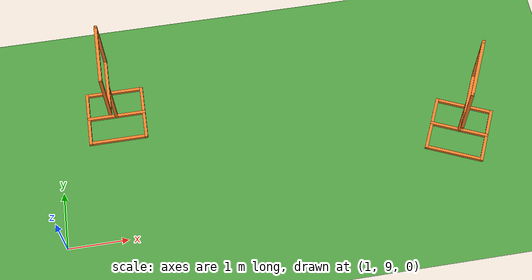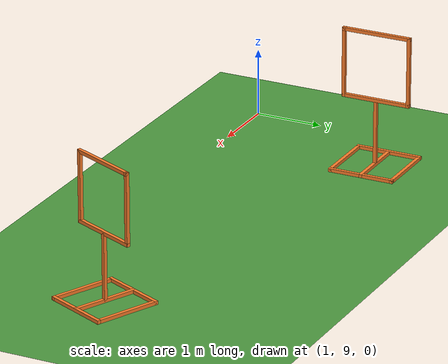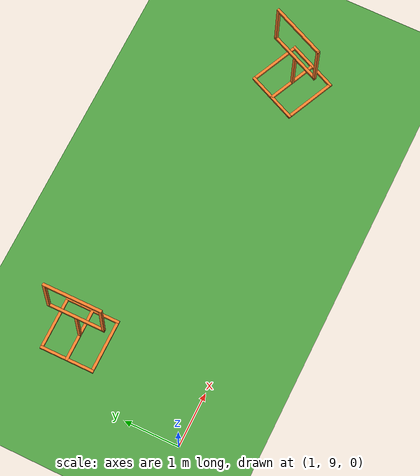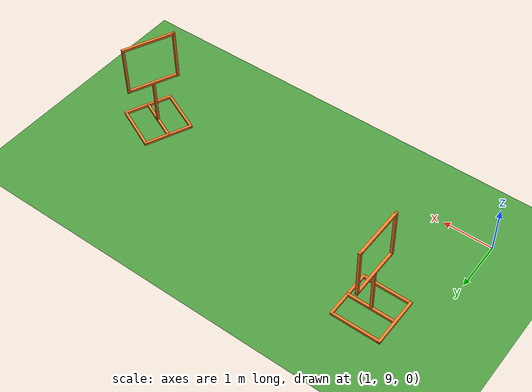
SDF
<sdf version="1.6">
 <world name="default">
  <model name="grass_plane">
   <static>1</static>
   <link name="link">
    <collision name="collision">
     <pose>-40 -40 0 0 -0 0</pose>
     <geometry><plane><normal>0 0 1</normal><size>40 40</size></plane></geometry>
     <surface><friction><ode><mu>0.5</mu><mu2>0.5</mu2></ode></friction></surface>
    </collision>
    <visual name="visual">
     <pose>-40 -40 0 0 -0 0</pose>
     <cast_shadows>0</cast_shadows>
     <geometry><plane><normal>0 0 1</normal><size>40 40</size></plane></geometry>
     <material>
      <script>
       <uri>model://grass_plane/materials/scripts</uri>
       <uri>model://grass_plane/materials/textures</uri>
       <name>vrc/grass</name>
      </script>
     </material>
    </visual>
   </link>
   <pose>40 40 0 0 -0 0</pose>
  </model>
  <model name="TMR_Gate_1">
   <link name="link">
    <pose>0 0 0.5 0 -0 0</pose>
    <inertial>
     <mass>1</mass>
     <inertia>
      <ixx>0.166667</ixx>
      <ixy>0</ixy>
      <ixz>0</ixz>
      <iyy>0.166667</iyy>
      <iyz>0</iyz>
      <izz>0.166667</izz>
     </inertia>
    </inertial>
    <visual name="visual">
     <geometry><box><size>0.05 0.05 1</size></box></geometry>
     <material>
      <script><name>Gazebo/Grey</name><uri>file://media/materials/scripts/gazebo.material</uri></script>
      <shader type="vertex"><normal_map>__default__</normal_map></shader>
      <ambient>0.976 0.484 0.164 1</ambient>
      <diffuse>0.976 0.484 0.164 1</diffuse>
      <specular>0.01 0.01 0.01 1</specular>
      <emissive>0 0 0 1</emissive>
     </material>
    </visual>
    <collision name="collision">
     <geometry><box><size>0.05 0.05 1</size></box></geometry>
     <surface>
      <friction>
       <ode><mu>1</mu><mu2>1</mu2><fdir1>0 0 0</fdir1><slip1>0</slip1><slip2>0</slip2></ode>
       <torsional>
        <coefficient>1</coefficient>
        <patch_radius>0</patch_radius>
        <surface_radius>0</surface_radius>
        <use_patch_radius>1</use_patch_radius>
        <ode><slip>0</slip></ode>
       </torsional>
      </friction>
      <bounce><restitution_coefficient>0</restitution_coefficient><threshold>1e+06</threshold></bounce>
      <contact>
       <collide_without_contact>0</collide_without_contact>
       <collide_without_contact_bitmask>1</collide_without_contact_bitmask>
       <collide_bitmask>1</collide_bitmask>
       <ode>
        <soft_cfm>0</soft_cfm>
        <soft_erp>0.2</soft_erp>
        <kp>1e+13</kp>
        <kd>1</kd>
        <max_vel>0.01</max_vel>
        <min_depth>0</min_depth>
       </ode>
       <bullet>
        <split_impulse>1</split_impulse>
        <split_impulse_penetration_threshold>-0.01</split_impulse_penetration_threshold>
        <soft_cfm>0</soft_cfm>
        <soft_erp>0.2</soft_erp>
        <kp>1e+13</kp>
        <kd>1</kd>
       </bullet>
      </contact>
     </surface>
    </collision>
   </link>
   <link name="link_10">
    <pose>0.5 0 0.8 0 -0 0</pose>
    <inertial>
     <mass>1</mass>
     <inertia>
      <ixx>0.166667</ixx>
      <ixy>0</ixy>
      <ixz>0</ixz>
      <iyy>0.166667</iyy>
      <iyz>0</iyz>
      <izz>0.166667</izz>
     </inertia>
    </inertial>
    <visual name="visual">
     <geometry><box><size>0.05 0.05 1.05</size></box></geometry>
     <material>
      <script><name>Gazebo/Grey</name><uri>file://media/materials/scripts/gazebo.material</uri></script>
      <shader type="vertex"><normal_map>__default__</normal_map></shader>
      <ambient>0.976 0.484 0.164 1</ambient>
      <diffuse>0.976 0.484 0.164 1</diffuse>
      <specular>0.01 0.01 0.01 1</specular>
      <emissive>0 0 0 1</emissive>
     </material>
     <pose>0 0 0.7 0 -0 0</pose>
    </visual>
    <collision name="collision">
     <pose>0 0 0.7 0 -0 0</pose>
     <geometry><box><size>0.05 0.05 1.05</size></box></geometry>
     <surface>
      <friction>
       <ode><mu>1</mu><mu2>1</mu2><fdir1>0 0 0</fdir1><slip1>0</slip1><slip2>0</slip2></ode>
       <torsional>
        <coefficient>1</coefficient>
        <patch_radius>0</patch_radius>
        <surface_radius>0</surface_radius>
        <use_patch_radius>1</use_patch_radius>
        <ode><slip>0</slip></ode>
       </torsional>
      </friction>
      <bounce><restitution_coefficient>0</restitution_coefficient><threshold>1e+06</threshold></bounce>
      <contact>
       <collide_without_contact>0</collide_without_contact>
       <collide_without_contact_bitmask>1</collide_without_contact_bitmask>
       <collide_bitmask>1</collide_bitmask>
       <ode>
        <soft_cfm>0</soft_cfm>
        <soft_erp>0.2</soft_erp>
        <kp>1e+13</kp>
        <kd>1</kd>
        <max_vel>0.01</max_vel>
        <min_depth>0</min_depth>
       </ode>
       <bullet>
        <split_impulse>1</split_impulse>
        <split_impulse_penetration_threshold>-0.01</split_impulse_penetration_threshold>
        <soft_cfm>0</soft_cfm>
        <soft_erp>0.2</soft_erp>
        <kp>1e+13</kp>
        <kd>1</kd>
       </bullet>
      </contact>
     </surface>
    </collision>
   </link>
   <link name="link_2">
    <pose>0 0 0.025 0 -0 0</pose>
    <inertial>
     <mass>1</mass>
     <inertia>
      <ixx>0.166667</ixx>
      <ixy>0</ixy>
      <ixz>0</ixz>
      <iyy>0.166667</iyy>
      <iyz>0</iyz>
      <izz>0.166667</izz>
     </inertia>
    </inertial>
    <visual name="visual">
     <geometry><box><size>0.05 1 0.05</size></box></geometry>
     <material>
      <script><name>Gazebo/Grey</name><uri>file://media/materials/scripts/gazebo.material</uri></script>
      <shader type="vertex"><normal_map>__default__</normal_map></shader>
      <ambient>0.976 0.484 0.164 1</ambient>
      <diffuse>0.976 0.484 0.164 1</diffuse>
      <specular>0.01 0.01 0.01 1</specular>
      <emissive>0 0 0 1</emissive>
     </material>
    </visual>
    <collision name="collision">
     <geometry><box><size>0.05 1 0.05</size></box></geometry>
     <surface>
      <friction>
       <ode><mu>1</mu><mu2>1</mu2><fdir1>0 0 0</fdir1><slip1>0</slip1><slip2>0</slip2></ode>
       <torsional>
        <coefficient>1</coefficient>
        <patch_radius>0</patch_radius>
        <surface_radius>0</surface_radius>
        <use_patch_radius>1</use_patch_radius>
        <ode><slip>0</slip></ode>
       </torsional>
      </friction>
      <bounce><restitution_coefficient>0</restitution_coefficient><threshold>1e+06</threshold></bounce>
      <contact>
       <collide_without_contact>0</collide_without_contact>
       <collide_without_contact_bitmask>1</collide_without_contact_bitmask>
       <collide_bitmask>1</collide_bitmask>
       <ode>
        <soft_cfm>0</soft_cfm>
        <soft_erp>0.2</soft_erp>
        <kp>1e+13</kp>
        <kd>1</kd>
        <max_vel>0.01</max_vel>
        <min_depth>0</min_depth>
       </ode>
       <bullet>
        <split_impulse>1</split_impulse>
        <split_impulse_penetration_threshold>-0.01</split_impulse_penetration_threshold>
        <soft_cfm>0</soft_cfm>
        <soft_erp>0.2</soft_erp>
        <kp>1e+13</kp>
        <kd>1</kd>
       </bullet>
      </contact>
     </surface>
    </collision>
   </link>
   <link name="link_3">
    <pose>0.475 0 0.024 0 -0 0</pose>
    <inertial>
     <mass>1</mass>
     <inertia>
      <ixx>0.166667</ixx>
      <ixy>0</ixy>
      <ixz>0</ixz>
      <iyy>0.166667</iyy>
      <iyz>0</iyz>
      <izz>0.166667</izz>
     </inertia>
    </inertial>
    <visual name="visual">
     <geometry><box><size>0.05 1 0.05</size></box></geometry>
     <material>
      <script><name>Gazebo/Grey</name><uri>file://media/materials/scripts/gazebo.material</uri></script>
      <shader type="vertex"><normal_map>__default__</normal_map></shader>
      <ambient>0.976 0.484 0.164 1</ambient>
      <diffuse>0.976 0.484 0.164 1</diffuse>
      <specular>0.01 0.01 0.01 1</specular>
      <emissive>0 0 0 1</emissive>
     </material>
    </visual>
    <collision name="collision">
     <geometry><box><size>0.05 1 0.05</size></box></geometry>
     <surface>
      <friction>
       <ode><mu>1</mu><mu2>1</mu2><fdir1>0 0 0</fdir1><slip1>0</slip1><slip2>0</slip2></ode>
       <torsional>
        <coefficient>1</coefficient>
        <patch_radius>0</patch_radius>
        <surface_radius>0</surface_radius>
        <use_patch_radius>1</use_patch_radius>
        <ode><slip>0</slip></ode>
       </torsional>
      </friction>
      <bounce><restitution_coefficient>0</restitution_coefficient><threshold>1e+06</threshold></bounce>
      <contact>
       <collide_without_contact>0</collide_without_contact>
       <collide_without_contact_bitmask>1</collide_without_contact_bitmask>
       <collide_bitmask>1</collide_bitmask>
       <ode>
        <soft_cfm>0</soft_cfm>
        <soft_erp>0.2</soft_erp>
        <kp>1e+13</kp>
        <kd>1</kd>
        <max_vel>0.01</max_vel>
        <min_depth>0</min_depth>
       </ode>
       <bullet>
        <split_impulse>1</split_impulse>
        <split_impulse_penetration_threshold>-0.01</split_impulse_penetration_threshold>
        <soft_cfm>0</soft_cfm>
        <soft_erp>0.2</soft_erp>
        <kp>1e+13</kp>
        <kd>1</kd>
       </bullet>
      </contact>
     </surface>
    </collision>
   </link>
   <link name="link_4">
    <pose>-0.475 -0 0.024 0 -0 0</pose>
    <inertial>
     <mass>1</mass>
     <inertia>
      <ixx>0.166667</ixx>
      <ixy>0</ixy>
      <ixz>0</ixz>
      <iyy>0.166667</iyy>
      <iyz>0</iyz>
      <izz>0.166667</izz>
     </inertia>
    </inertial>
    <visual name="visual">
     <geometry><box><size>0.05 1 0.05</size></box></geometry>
     <material>
      <script><name>Gazebo/Grey</name><uri>file://media/materials/scripts/gazebo.material</uri></script>
      <shader type="vertex"><normal_map>__default__</normal_map></shader>
      <ambient>0.976 0.484 0.164 1</ambient>
      <diffuse>0.976 0.484 0.164 1</diffuse>
      <specular>0.01 0.01 0.01 1</specular>
      <emissive>0 0 0 1</emissive>
     </material>
    </visual>
    <collision name="collision">
     <geometry><box><size>0.05 1 0.05</size></box></geometry>
     <surface>
      <friction>
       <ode><mu>1</mu><mu2>1</mu2><fdir1>0 0 0</fdir1><slip1>0</slip1><slip2>0</slip2></ode>
       <torsional>
        <coefficient>1</coefficient>
        <patch_radius>0</patch_radius>
        <surface_radius>0</surface_radius>
        <use_patch_radius>1</use_patch_radius>
        <ode><slip>0</slip></ode>
       </torsional>
      </friction>
      <bounce><restitution_coefficient>0</restitution_coefficient><threshold>1e+06</threshold></bounce>
      <contact>
       <collide_without_contact>0</collide_without_contact>
       <collide_without_contact_bitmask>1</collide_without_contact_bitmask>
       <collide_bitmask>1</collide_bitmask>
       <ode>
        <soft_cfm>0</soft_cfm>
        <soft_erp>0.2</soft_erp>
        <kp>1e+13</kp>
        <kd>1</kd>
        <max_vel>0.01</max_vel>
        <min_depth>0</min_depth>
       </ode>
       <bullet>
        <split_impulse>1</split_impulse>
        <split_impulse_penetration_threshold>-0.01</split_impulse_penetration_threshold>
        <soft_cfm>0</soft_cfm>
        <soft_erp>0.2</soft_erp>
        <kp>1e+13</kp>
        <kd>1</kd>
       </bullet>
      </contact>
     </surface>
    </collision>
   </link>
   <link name="link_5">
    <pose>0 0.475 0.025 0 -0 0</pose>
    <inertial>
     <mass>1</mass>
     <inertia>
      <ixx>0.166667</ixx>
      <ixy>0</ixy>
      <ixz>0</ixz>
      <iyy>0.166667</iyy>
      <iyz>0</iyz>
      <izz>0.166667</izz>
     </inertia>
    </inertial>
    <visual name="visual">
     <geometry><box><size>1 0.05 0.05</size></box></geometry>
     <material>
      <script><name>Gazebo/Grey</name><uri>file://media/materials/scripts/gazebo.material</uri></script>
      <shader type="vertex"><normal_map>__default__</normal_map></shader>
      <ambient>0.976 0.484 0.164 1</ambient>
      <diffuse>0.976 0.484 0.164 1</diffuse>
      <specular>0.01 0.01 0.01 1</specular>
      <emissive>0 0 0 1</emissive>
     </material>
    </visual>
    <collision name="collision">
     <geometry><box><size>1 0.05 0.05</size></box></geometry>
     <surface>
      <friction>
       <ode><mu>1</mu><mu2>1</mu2><fdir1>0 0 0</fdir1><slip1>0</slip1><slip2>0</slip2></ode>
       <torsional>
        <coefficient>1</coefficient>
        <patch_radius>0</patch_radius>
        <surface_radius>0</surface_radius>
        <use_patch_radius>1</use_patch_radius>
        <ode><slip>0</slip></ode>
       </torsional>
      </friction>
      <bounce><restitution_coefficient>0</restitution_coefficient><threshold>1e+06</threshold></bounce>
      <contact>
       <collide_without_contact>0</collide_without_contact>
       <collide_without_contact_bitmask>1</collide_without_contact_bitmask>
       <collide_bitmask>1</collide_bitmask>
       <ode>
        <soft_cfm>0</soft_cfm>
        <soft_erp>0.2</soft_erp>
        <kp>1e+13</kp>
        <kd>1</kd>
        <max_vel>0.01</max_vel>
        <min_depth>0</min_depth>
       </ode>
       <bullet>
        <split_impulse>1</split_impulse>
        <split_impulse_penetration_threshold>-0.01</split_impulse_penetration_threshold>
        <soft_cfm>0</soft_cfm>
        <soft_erp>0.2</soft_erp>
        <kp>1e+13</kp>
        <kd>1</kd>
       </bullet>
      </contact>
     </surface>
    </collision>
   </link>
   <link name="link_6">
    <pose>-0 -0.475 0.025 0 -0 0</pose>
    <inertial>
     <mass>1</mass>
     <inertia>
      <ixx>0.166667</ixx>
      <ixy>0</ixy>
      <ixz>0</ixz>
      <iyy>0.166667</iyy>
      <iyz>0</iyz>
      <izz>0.166667</izz>
     </inertia>
    </inertial>
    <visual name="visual">
     <geometry><box><size>1 0.05 0.05</size></box></geometry>
     <material>
      <script><name>Gazebo/Grey</name><uri>file://media/materials/scripts/gazebo.material</uri></script>
      <shader type="vertex"><normal_map>__default__</normal_map></shader>
      <ambient>0.976 0.484 0.164 1</ambient>
      <diffuse>0.976 0.484 0.164 1</diffuse>
      <specular>0.01 0.01 0.01 1</specular>
      <emissive>0 0 0 1</emissive>
     </material>
    </visual>
    <collision name="collision">
     <geometry><box><size>1 0.05 0.05</size></box></geometry>
     <surface>
      <friction>
       <ode><mu>1</mu><mu2>1</mu2><fdir1>0 0 0</fdir1><slip1>0</slip1><slip2>0</slip2></ode>
       <torsional>
        <coefficient>1</coefficient>
        <patch_radius>0</patch_radius>
        <surface_radius>0</surface_radius>
        <use_patch_radius>1</use_patch_radius>
        <ode><slip>0</slip></ode>
       </torsional>
      </friction>
      <bounce><restitution_coefficient>0</restitution_coefficient><threshold>1e+06</threshold></bounce>
      <contact>
       <collide_without_contact>0</collide_without_contact>
       <collide_without_contact_bitmask>1</collide_without_contact_bitmask>
       <collide_bitmask>1</collide_bitmask>
       <ode>
        <soft_cfm>0</soft_cfm>
        <soft_erp>0.2</soft_erp>
        <kp>1e+13</kp>
        <kd>1</kd>
        <max_vel>0.01</max_vel>
        <min_depth>0</min_depth>
       </ode>
       <bullet>
        <split_impulse>1</split_impulse>
        <split_impulse_penetration_threshold>-0.01</split_impulse_penetration_threshold>
        <soft_cfm>0</soft_cfm>
        <soft_erp>0.2</soft_erp>
        <kp>1e+13</kp>
        <kd>1</kd>
       </bullet>
      </contact>
     </surface>
    </collision>
   </link>
   <link name="link_7">
    <pose>0 0 2 0 -0 0</pose>
    <inertial>
     <mass>1</mass>
     <inertia>
      <ixx>0.166667</ixx>
      <ixy>0</ixy>
      <ixz>0</ixz>
      <iyy>0.166667</iyy>
      <iyz>0</iyz>
      <izz>0.166667</izz>
     </inertia>
    </inertial>
    <visual name="visual">
     <geometry><box><size>1.05 0.05 0.05</size></box></geometry>
     <material>
      <script><name>Gazebo/Grey</name><uri>file://media/materials/scripts/gazebo.material</uri></script>
      <shader type="vertex"><normal_map>__default__</normal_map></shader>
      <ambient>0.976 0.484 0.164 1</ambient>
      <diffuse>0.976 0.484 0.164 1</diffuse>
      <specular>0.01 0.01 0.01 1</specular>
      <emissive>0 0 0 1</emissive>
     </material>
    </visual>
    <collision name="collision">
     <geometry><box><size>1.05 0.05 0.05</size></box></geometry>
     <surface>
      <friction>
       <ode><mu>1</mu><mu2>1</mu2><fdir1>0 0 0</fdir1><slip1>0</slip1><slip2>0</slip2></ode>
       <torsional>
        <coefficient>1</coefficient>
        <patch_radius>0</patch_radius>
        <surface_radius>0</surface_radius>
        <use_patch_radius>1</use_patch_radius>
        <ode><slip>0</slip></ode>
       </torsional>
      </friction>
      <bounce><restitution_coefficient>0</restitution_coefficient><threshold>1e+06</threshold></bounce>
      <contact>
       <collide_without_contact>0</collide_without_contact>
       <collide_without_contact_bitmask>1</collide_without_contact_bitmask>
       <collide_bitmask>1</collide_bitmask>
       <ode>
        <soft_cfm>0</soft_cfm>
        <soft_erp>0.2</soft_erp>
        <kp>1e+13</kp>
        <kd>1</kd>
        <max_vel>0.01</max_vel>
        <min_depth>0</min_depth>
       </ode>
       <bullet>
        <split_impulse>1</split_impulse>
        <split_impulse_penetration_threshold>-0.01</split_impulse_penetration_threshold>
        <soft_cfm>0</soft_cfm>
        <soft_erp>0.2</soft_erp>
        <kp>1e+13</kp>
        <kd>1</kd>
       </bullet>
      </contact>
     </surface>
    </collision>
   </link>
   <link name="link_8">
    <pose>0 0 1 0 -0 0</pose>
    <inertial>
     <mass>1</mass>
     <inertia>
      <ixx>0.166667</ixx>
      <ixy>0</ixy>
      <ixz>0</ixz>
      <iyy>0.166667</iyy>
      <iyz>0</iyz>
      <izz>0.166667</izz>
     </inertia>
    </inertial>
    <visual name="visual">
     <geometry><box><size>1.05 0.05 0.05</size></box></geometry>
     <material>
      <script><name>Gazebo/Grey</name><uri>file://media/materials/scripts/gazebo.material</uri></script>
      <shader type="vertex"><normal_map>__default__</normal_map></shader>
      <ambient>0.976 0.484 0.164 1</ambient>
      <diffuse>0.976 0.484 0.164 1</diffuse>
      <specular>0.01 0.01 0.01 1</specular>
      <emissive>0 0 0 1</emissive>
     </material>
    </visual>
    <collision name="collision">
     <geometry><box><size>1.05 0.05 0.05</size></box></geometry>
     <surface>
      <friction>
       <ode><mu>1</mu><mu2>1</mu2><fdir1>0 0 0</fdir1><slip1>0</slip1><slip2>0</slip2></ode>
       <torsional>
        <coefficient>1</coefficient>
        <patch_radius>0</patch_radius>
        <surface_radius>0</surface_radius>
        <use_patch_radius>1</use_patch_radius>
        <ode><slip>0</slip></ode>
       </torsional>
      </friction>
      <bounce><restitution_coefficient>0</restitution_coefficient><threshold>1e+06</threshold></bounce>
      <contact>
       <collide_without_contact>0</collide_without_contact>
       <collide_without_contact_bitmask>1</collide_without_contact_bitmask>
       <collide_bitmask>1</collide_bitmask>
       <ode>
        <soft_cfm>0</soft_cfm>
        <soft_erp>0.2</soft_erp>
        <kp>1e+13</kp>
        <kd>1</kd>
        <max_vel>0.01</max_vel>
        <min_depth>0</min_depth>
       </ode>
       <bullet>
        <split_impulse>1</split_impulse>
        <split_impulse_penetration_threshold>-0.01</split_impulse_penetration_threshold>
        <soft_cfm>0</soft_cfm>
        <soft_erp>0.2</soft_erp>
        <kp>1e+13</kp>
        <kd>1</kd>
       </bullet>
      </contact>
     </surface>
    </collision>
   </link>
   <link name="link_9">
    <pose>-0.5 -0 0.8 0 -0 0</pose>
    <inertial>
     <mass>1</mass>
     <inertia>
      <ixx>0.166667</ixx>
      <ixy>0</ixy>
      <ixz>0</ixz>
      <iyy>0.166667</iyy>
      <iyz>0</iyz>
      <izz>0.166667</izz>
     </inertia>
    </inertial>
    <visual name="visual">
     <geometry><box><size>0.05 0.05 1.05</size></box></geometry>
     <material>
      <script><name>Gazebo/Grey</name><uri>file://media/materials/scripts/gazebo.material</uri></script>
      <shader type="vertex"><normal_map>__default__</normal_map></shader>
      <ambient>0.976 0.484 0.164 1</ambient>
      <diffuse>0.976 0.484 0.164 1</diffuse>
      <specular>0.01 0.01 0.01 1</specular>
      <emissive>0 0 0 1</emissive>
     </material>
     <pose>0 0 0.7 0 -0 0</pose>
    </visual>
    <collision name="collision">
     <pose>0 0 0.7 0 -0 0</pose>
     <geometry><box><size>0.05 0.05 1.05</size></box></geometry>
     <surface>
      <friction>
       <ode><mu>1</mu><mu2>1</mu2><fdir1>0 0 0</fdir1><slip1>0</slip1><slip2>0</slip2></ode>
       <torsional>
        <coefficient>1</coefficient>
        <patch_radius>0</patch_radius>
        <surface_radius>0</surface_radius>
        <use_patch_radius>1</use_patch_radius>
        <ode><slip>0</slip></ode>
       </torsional>
      </friction>
      <bounce><restitution_coefficient>0</restitution_coefficient><threshold>1e+06</threshold></bounce>
      <contact>
       <collide_without_contact>0</collide_without_contact>
       <collide_without_contact_bitmask>1</collide_without_contact_bitmask>
       <collide_bitmask>1</collide_bitmask>
       <ode>
        <soft_cfm>0</soft_cfm>
        <soft_erp>0.2</soft_erp>
        <kp>1e+13</kp>
        <kd>1</kd>
        <max_vel>0.01</max_vel>
        <min_depth>0</min_depth>
       </ode>
       <bullet>
        <split_impulse>1</split_impulse>
        <split_impulse_penetration_threshold>-0.01</split_impulse_penetration_threshold>
        <soft_cfm>0</soft_cfm>
        <soft_erp>0.2</soft_erp>
        <kp>1e+13</kp>
        <kd>1</kd>
       </bullet>
      </contact>
     </surface>
    </collision>
   </link>
   <static>1</static>
   <pose>1.98994 11.3392 0 0 0 -1.57</pose>
  </model>
  <model name="TMR_Gate_2">
   <link name="link">
    <pose>0 0 0.5 0 -0 0</pose>
    <inertial>
     <mass>1</mass>
     <inertia>
      <ixx>0.166667</ixx>
      <ixy>0</ixy>
      <ixz>0</ixz>
      <iyy>0.166667</iyy>
      <iyz>0</iyz>
      <izz>0.166667</izz>
     </inertia>
    </inertial>
    <visual name="visual">
     <geometry><box><size>0.05 0.05 1</size></box></geometry>
     <material>
      <script><name>Gazebo/Grey</name><uri>file://media/materials/scripts/gazebo.material</uri></script>
      <shader type="vertex"><normal_map>__default__</normal_map></shader>
      <ambient>0.976 0.484 0.164 1</ambient>
      <diffuse>0.976 0.484 0.164 1</diffuse>
      <specular>0.01 0.01 0.01 1</specular>
      <emissive>0 0 0 1</emissive>
     </material>
    </visual>
    <collision name="collision">
     <geometry><box><size>0.05 0.05 1</size></box></geometry>
     <surface>
      <friction>
       <ode><mu>1</mu><mu2>1</mu2><fdir1>0 0 0</fdir1><slip1>0</slip1><slip2>0</slip2></ode>
       <torsional>
        <coefficient>1</coefficient>
        <patch_radius>0</patch_radius>
        <surface_radius>0</surface_radius>
        <use_patch_radius>1</use_patch_radius>
        <ode><slip>0</slip></ode>
       </torsional>
      </friction>
      <bounce><restitution_coefficient>0</restitution_coefficient><threshold>1e+06</threshold></bounce>
      <contact>
       <collide_without_contact>0</collide_without_contact>
       <collide_without_contact_bitmask>1</collide_without_contact_bitmask>
       <collide_bitmask>1</collide_bitmask>
       <ode>
        <soft_cfm>0</soft_cfm>
        <soft_erp>0.2</soft_erp>
        <kp>1e+13</kp>
        <kd>1</kd>
        <max_vel>0.01</max_vel>
        <min_depth>0</min_depth>
       </ode>
       <bullet>
        <split_impulse>1</split_impulse>
        <split_impulse_penetration_threshold>-0.01</split_impulse_penetration_threshold>
        <soft_cfm>0</soft_cfm>
        <soft_erp>0.2</soft_erp>
        <kp>1e+13</kp>
        <kd>1</kd>
       </bullet>
      </contact>
     </surface>
    </collision>
   </link>
   <link name="link_10">
    <pose>0.5 0 0.8 0 -0 0</pose>
    <inertial>
     <mass>1</mass>
     <inertia>
      <ixx>0.166667</ixx>
      <ixy>0</ixy>
      <ixz>0</ixz>
      <iyy>0.166667</iyy>
      <iyz>0</iyz>
      <izz>0.166667</izz>
     </inertia>
    </inertial>
    <visual name="visual">
     <geometry><box><size>0.05 0.05 1.05</size></box></geometry>
     <material>
      <script><name>Gazebo/Grey</name><uri>file://media/materials/scripts/gazebo.material</uri></script>
      <shader type="vertex"><normal_map>__default__</normal_map></shader>
      <ambient>0.976 0.484 0.164 1</ambient>
      <diffuse>0.976 0.484 0.164 1</diffuse>
      <specular>0.01 0.01 0.01 1</specular>
      <emissive>0 0 0 1</emissive>
     </material>
     <pose>0 0 0.7 0 -0 0</pose>
    </visual>
    <collision name="collision">
     <pose>0 0 0.7 0 -0 0</pose>
     <geometry><box><size>0.05 0.05 1.05</size></box></geometry>
     <surface>
      <friction>
       <ode><mu>1</mu><mu2>1</mu2><fdir1>0 0 0</fdir1><slip1>0</slip1><slip2>0</slip2></ode>
       <torsional>
        <coefficient>1</coefficient>
        <patch_radius>0</patch_radius>
        <surface_radius>0</surface_radius>
        <use_patch_radius>1</use_patch_radius>
        <ode><slip>0</slip></ode>
       </torsional>
      </friction>
      <bounce><restitution_coefficient>0</restitution_coefficient><threshold>1e+06</threshold></bounce>
      <contact>
       <collide_without_contact>0</collide_without_contact>
       <collide_without_contact_bitmask>1</collide_without_contact_bitmask>
       <collide_bitmask>1</collide_bitmask>
       <ode>
        <soft_cfm>0</soft_cfm>
        <soft_erp>0.2</soft_erp>
        <kp>1e+13</kp>
        <kd>1</kd>
        <max_vel>0.01</max_vel>
        <min_depth>0</min_depth>
       </ode>
       <bullet>
        <split_impulse>1</split_impulse>
        <split_impulse_penetration_threshold>-0.01</split_impulse_penetration_threshold>
        <soft_cfm>0</soft_cfm>
        <soft_erp>0.2</soft_erp>
        <kp>1e+13</kp>
        <kd>1</kd>
       </bullet>
      </contact>
     </surface>
    </collision>
   </link>
   <link name="link_2">
    <pose>0 0 0.025 0 -0 0</pose>
    <inertial>
     <mass>1</mass>
     <inertia>
      <ixx>0.166667</ixx>
      <ixy>0</ixy>
      <ixz>0</ixz>
      <iyy>0.166667</iyy>
      <iyz>0</iyz>
      <izz>0.166667</izz>
     </inertia>
    </inertial>
    <visual name="visual">
     <geometry><box><size>0.05 1 0.05</size></box></geometry>
     <material>
      <script><name>Gazebo/Grey</name><uri>file://media/materials/scripts/gazebo.material</uri></script>
      <shader type="vertex"><normal_map>__default__</normal_map></shader>
      <ambient>0.976 0.484 0.164 1</ambient>
      <diffuse>0.976 0.484 0.164 1</diffuse>
      <specular>0.01 0.01 0.01 1</specular>
      <emissive>0 0 0 1</emissive>
     </material>
    </visual>
    <collision name="collision">
     <geometry><box><size>0.05 1 0.05</size></box></geometry>
     <surface>
      <friction>
       <ode><mu>1</mu><mu2>1</mu2><fdir1>0 0 0</fdir1><slip1>0</slip1><slip2>0</slip2></ode>
       <torsional>
        <coefficient>1</coefficient>
        <patch_radius>0</patch_radius>
        <surface_radius>0</surface_radius>
        <use_patch_radius>1</use_patch_radius>
        <ode><slip>0</slip></ode>
       </torsional>
      </friction>
      <bounce><restitution_coefficient>0</restitution_coefficient><threshold>1e+06</threshold></bounce>
      <contact>
       <collide_without_contact>0</collide_without_contact>
       <collide_without_contact_bitmask>1</collide_without_contact_bitmask>
       <collide_bitmask>1</collide_bitmask>
       <ode>
        <soft_cfm>0</soft_cfm>
        <soft_erp>0.2</soft_erp>
        <kp>1e+13</kp>
        <kd>1</kd>
        <max_vel>0.01</max_vel>
        <min_depth>0</min_depth>
       </ode>
       <bullet>
        <split_impulse>1</split_impulse>
        <split_impulse_penetration_threshold>-0.01</split_impulse_penetration_threshold>
        <soft_cfm>0</soft_cfm>
        <soft_erp>0.2</soft_erp>
        <kp>1e+13</kp>
        <kd>1</kd>
       </bullet>
      </contact>
     </surface>
    </collision>
   </link>
   <link name="link_3">
    <pose>0.475 0 0.024 0 -0 0</pose>
    <inertial>
     <mass>1</mass>
     <inertia>
      <ixx>0.166667</ixx>
      <ixy>0</ixy>
      <ixz>0</ixz>
      <iyy>0.166667</iyy>
      <iyz>0</iyz>
      <izz>0.166667</izz>
     </inertia>
    </inertial>
    <visual name="visual">
     <geometry><box><size>0.05 1 0.05</size></box></geometry>
     <material>
      <script><name>Gazebo/Grey</name><uri>file://media/materials/scripts/gazebo.material</uri></script>
      <shader type="vertex"><normal_map>__default__</normal_map></shader>
      <ambient>0.976 0.484 0.164 1</ambient>
      <diffuse>0.976 0.484 0.164 1</diffuse>
      <specular>0.01 0.01 0.01 1</specular>
      <emissive>0 0 0 1</emissive>
     </material>
    </visual>
    <collision name="collision">
     <geometry><box><size>0.05 1 0.05</size></box></geometry>
     <surface>
      <friction>
       <ode><mu>1</mu><mu2>1</mu2><fdir1>0 0 0</fdir1><slip1>0</slip1><slip2>0</slip2></ode>
       <torsional>
        <coefficient>1</coefficient>
        <patch_radius>0</patch_radius>
        <surface_radius>0</surface_radius>
        <use_patch_radius>1</use_patch_radius>
        <ode><slip>0</slip></ode>
       </torsional>
      </friction>
      <bounce><restitution_coefficient>0</restitution_coefficient><threshold>1e+06</threshold></bounce>
      <contact>
       <collide_without_contact>0</collide_without_contact>
       <collide_without_contact_bitmask>1</collide_without_contact_bitmask>
       <collide_bitmask>1</collide_bitmask>
       <ode>
        <soft_cfm>0</soft_cfm>
        <soft_erp>0.2</soft_erp>
        <kp>1e+13</kp>
        <kd>1</kd>
        <max_vel>0.01</max_vel>
        <min_depth>0</min_depth>
       </ode>
       <bullet>
        <split_impulse>1</split_impulse>
        <split_impulse_penetration_threshold>-0.01</split_impulse_penetration_threshold>
        <soft_cfm>0</soft_cfm>
        <soft_erp>0.2</soft_erp>
        <kp>1e+13</kp>
        <kd>1</kd>
       </bullet>
      </contact>
     </surface>
    </collision>
   </link>
   <link name="link_4">
    <pose>-0.475 -0 0.024 0 -0 0</pose>
    <inertial>
     <mass>1</mass>
     <inertia>
      <ixx>0.166667</ixx>
      <ixy>0</ixy>
      <ixz>0</ixz>
      <iyy>0.166667</iyy>
      <iyz>0</iyz>
      <izz>0.166667</izz>
     </inertia>
    </inertial>
    <visual name="visual">
     <geometry><box><size>0.05 1 0.05</size></box></geometry>
     <material>
      <script><name>Gazebo/Grey</name><uri>file://media/materials/scripts/gazebo.material</uri></script>
      <shader type="vertex"><normal_map>__default__</normal_map></shader>
      <ambient>0.976 0.484 0.164 1</ambient>
      <diffuse>0.976 0.484 0.164 1</diffuse>
      <specular>0.01 0.01 0.01 1</specular>
      <emissive>0 0 0 1</emissive>
     </material>
    </visual>
    <collision name="collision">
     <geometry><box><size>0.05 1 0.05</size></box></geometry>
     <surface>
      <friction>
       <ode><mu>1</mu><mu2>1</mu2><fdir1>0 0 0</fdir1><slip1>0</slip1><slip2>0</slip2></ode>
       <torsional>
        <coefficient>1</coefficient>
        <patch_radius>0</patch_radius>
        <surface_radius>0</surface_radius>
        <use_patch_radius>1</use_patch_radius>
        <ode><slip>0</slip></ode>
       </torsional>
      </friction>
      <bounce><restitution_coefficient>0</restitution_coefficient><threshold>1e+06</threshold></bounce>
      <contact>
       <collide_without_contact>0</collide_without_contact>
       <collide_without_contact_bitmask>1</collide_without_contact_bitmask>
       <collide_bitmask>1</collide_bitmask>
       <ode>
        <soft_cfm>0</soft_cfm>
        <soft_erp>0.2</soft_erp>
        <kp>1e+13</kp>
        <kd>1</kd>
        <max_vel>0.01</max_vel>
        <min_depth>0</min_depth>
       </ode>
       <bullet>
        <split_impulse>1</split_impulse>
        <split_impulse_penetration_threshold>-0.01</split_impulse_penetration_threshold>
        <soft_cfm>0</soft_cfm>
        <soft_erp>0.2</soft_erp>
        <kp>1e+13</kp>
        <kd>1</kd>
       </bullet>
      </contact>
     </surface>
    </collision>
   </link>
   <link name="link_5">
    <pose>0 0.475 0.025 0 -0 0</pose>
    <inertial>
     <mass>1</mass>
     <inertia>
      <ixx>0.166667</ixx>
      <ixy>0</ixy>
      <ixz>0</ixz>
      <iyy>0.166667</iyy>
      <iyz>0</iyz>
      <izz>0.166667</izz>
     </inertia>
    </inertial>
    <visual name="visual">
     <geometry><box><size>1 0.05 0.05</size></box></geometry>
     <material>
      <script><name>Gazebo/Grey</name><uri>file://media/materials/scripts/gazebo.material</uri></script>
      <shader type="vertex"><normal_map>__default__</normal_map></shader>
      <ambient>0.976 0.484 0.164 1</ambient>
      <diffuse>0.976 0.484 0.164 1</diffuse>
      <specular>0.01 0.01 0.01 1</specular>
      <emissive>0 0 0 1</emissive>
     </material>
    </visual>
    <collision name="collision">
     <geometry><box><size>1 0.05 0.05</size></box></geometry>
     <surface>
      <friction>
       <ode><mu>1</mu><mu2>1</mu2><fdir1>0 0 0</fdir1><slip1>0</slip1><slip2>0</slip2></ode>
       <torsional>
        <coefficient>1</coefficient>
        <patch_radius>0</patch_radius>
        <surface_radius>0</surface_radius>
        <use_patch_radius>1</use_patch_radius>
        <ode><slip>0</slip></ode>
       </torsional>
      </friction>
      <bounce><restitution_coefficient>0</restitution_coefficient><threshold>1e+06</threshold></bounce>
      <contact>
       <collide_without_contact>0</collide_without_contact>
       <collide_without_contact_bitmask>1</collide_without_contact_bitmask>
       <collide_bitmask>1</collide_bitmask>
       <ode>
        <soft_cfm>0</soft_cfm>
        <soft_erp>0.2</soft_erp>
        <kp>1e+13</kp>
        <kd>1</kd>
        <max_vel>0.01</max_vel>
        <min_depth>0</min_depth>
       </ode>
       <bullet>
        <split_impulse>1</split_impulse>
        <split_impulse_penetration_threshold>-0.01</split_impulse_penetration_threshold>
        <soft_cfm>0</soft_cfm>
        <soft_erp>0.2</soft_erp>
        <kp>1e+13</kp>
        <kd>1</kd>
       </bullet>
      </contact>
     </surface>
    </collision>
   </link>
   <link name="link_6">
    <pose>-0 -0.475 0.025 0 -0 0</pose>
    <inertial>
     <mass>1</mass>
     <inertia>
      <ixx>0.166667</ixx>
      <ixy>0</ixy>
      <ixz>0</ixz>
      <iyy>0.166667</iyy>
      <iyz>0</iyz>
      <izz>0.166667</izz>
     </inertia>
    </inertial>
    <visual name="visual">
     <geometry><box><size>1 0.05 0.05</size></box></geometry>
     <material>
      <script><name>Gazebo/Grey</name><uri>file://media/materials/scripts/gazebo.material</uri></script>
      <shader type="vertex"><normal_map>__default__</normal_map></shader>
      <ambient>0.976 0.484 0.164 1</ambient>
      <diffuse>0.976 0.484 0.164 1</diffuse>
      <specular>0.01 0.01 0.01 1</specular>
      <emissive>0 0 0 1</emissive>
     </material>
    </visual>
    <collision name="collision">
     <geometry><box><size>1 0.05 0.05</size></box></geometry>
     <surface>
      <friction>
       <ode><mu>1</mu><mu2>1</mu2><fdir1>0 0 0</fdir1><slip1>0</slip1><slip2>0</slip2></ode>
       <torsional>
        <coefficient>1</coefficient>
        <patch_radius>0</patch_radius>
        <surface_radius>0</surface_radius>
        <use_patch_radius>1</use_patch_radius>
        <ode><slip>0</slip></ode>
       </torsional>
      </friction>
      <bounce><restitution_coefficient>0</restitution_coefficient><threshold>1e+06</threshold></bounce>
      <contact>
       <collide_without_contact>0</collide_without_contact>
       <collide_without_contact_bitmask>1</collide_without_contact_bitmask>
       <collide_bitmask>1</collide_bitmask>
       <ode>
        <soft_cfm>0</soft_cfm>
        <soft_erp>0.2</soft_erp>
        <kp>1e+13</kp>
        <kd>1</kd>
        <max_vel>0.01</max_vel>
        <min_depth>0</min_depth>
       </ode>
       <bullet>
        <split_impulse>1</split_impulse>
        <split_impulse_penetration_threshold>-0.01</split_impulse_penetration_threshold>
        <soft_cfm>0</soft_cfm>
        <soft_erp>0.2</soft_erp>
        <kp>1e+13</kp>
        <kd>1</kd>
       </bullet>
      </contact>
     </surface>
    </collision>
   </link>
   <link name="link_7">
    <pose>0 0 2 0 -0 0</pose>
    <inertial>
     <mass>1</mass>
     <inertia>
      <ixx>0.166667</ixx>
      <ixy>0</ixy>
      <ixz>0</ixz>
      <iyy>0.166667</iyy>
      <iyz>0</iyz>
      <izz>0.166667</izz>
     </inertia>
    </inertial>
    <visual name="visual">
     <geometry><box><size>1.05 0.05 0.05</size></box></geometry>
     <material>
      <script><name>Gazebo/Grey</name><uri>file://media/materials/scripts/gazebo.material</uri></script>
      <shader type="vertex"><normal_map>__default__</normal_map></shader>
      <ambient>0.976 0.484 0.164 1</ambient>
      <diffuse>0.976 0.484 0.164 1</diffuse>
      <specular>0.01 0.01 0.01 1</specular>
      <emissive>0 0 0 1</emissive>
     </material>
    </visual>
    <collision name="collision">
     <geometry><box><size>1.05 0.05 0.05</size></box></geometry>
     <surface>
      <friction>
       <ode><mu>1</mu><mu2>1</mu2><fdir1>0 0 0</fdir1><slip1>0</slip1><slip2>0</slip2></ode>
       <torsional>
        <coefficient>1</coefficient>
        <patch_radius>0</patch_radius>
        <surface_radius>0</surface_radius>
        <use_patch_radius>1</use_patch_radius>
        <ode><slip>0</slip></ode>
       </torsional>
      </friction>
      <bounce><restitution_coefficient>0</restitution_coefficient><threshold>1e+06</threshold></bounce>
      <contact>
       <collide_without_contact>0</collide_without_contact>
       <collide_without_contact_bitmask>1</collide_without_contact_bitmask>
       <collide_bitmask>1</collide_bitmask>
       <ode>
        <soft_cfm>0</soft_cfm>
        <soft_erp>0.2</soft_erp>
        <kp>1e+13</kp>
        <kd>1</kd>
        <max_vel>0.01</max_vel>
        <min_depth>0</min_depth>
       </ode>
       <bullet>
        <split_impulse>1</split_impulse>
        <split_impulse_penetration_threshold>-0.01</split_impulse_penetration_threshold>
        <soft_cfm>0</soft_cfm>
        <soft_erp>0.2</soft_erp>
        <kp>1e+13</kp>
        <kd>1</kd>
       </bullet>
      </contact>
     </surface>
    </collision>
   </link>
   <link name="link_8">
    <pose>0 0 1 0 -0 0</pose>
    <inertial>
     <mass>1</mass>
     <inertia>
      <ixx>0.166667</ixx>
      <ixy>0</ixy>
      <ixz>0</ixz>
      <iyy>0.166667</iyy>
      <iyz>0</iyz>
      <izz>0.166667</izz>
     </inertia>
    </inertial>
    <visual name="visual">
     <geometry><box><size>1.05 0.05 0.05</size></box></geometry>
     <material>
      <script><name>Gazebo/Grey</name><uri>file://media/materials/scripts/gazebo.material</uri></script>
      <shader type="vertex"><normal_map>__default__</normal_map></shader>
      <ambient>0.976 0.484 0.164 1</ambient>
      <diffuse>0.976 0.484 0.164 1</diffuse>
      <specular>0.01 0.01 0.01 1</specular>
      <emissive>0 0 0 1</emissive>
     </material>
    </visual>
    <collision name="collision">
     <geometry><box><size>1.05 0.05 0.05</size></box></geometry>
     <surface>
      <friction>
       <ode><mu>1</mu><mu2>1</mu2><fdir1>0 0 0</fdir1><slip1>0</slip1><slip2>0</slip2></ode>
       <torsional>
        <coefficient>1</coefficient>
        <patch_radius>0</patch_radius>
        <surface_radius>0</surface_radius>
        <use_patch_radius>1</use_patch_radius>
        <ode><slip>0</slip></ode>
       </torsional>
      </friction>
      <bounce><restitution_coefficient>0</restitution_coefficient><threshold>1e+06</threshold></bounce>
      <contact>
       <collide_without_contact>0</collide_without_contact>
       <collide_without_contact_bitmask>1</collide_without_contact_bitmask>
       <collide_bitmask>1</collide_bitmask>
       <ode>
        <soft_cfm>0</soft_cfm>
        <soft_erp>0.2</soft_erp>
        <kp>1e+13</kp>
        <kd>1</kd>
        <max_vel>0.01</max_vel>
        <min_depth>0</min_depth>
       </ode>
       <bullet>
        <split_impulse>1</split_impulse>
        <split_impulse_penetration_threshold>-0.01</split_impulse_penetration_threshold>
        <soft_cfm>0</soft_cfm>
        <soft_erp>0.2</soft_erp>
        <kp>1e+13</kp>
        <kd>1</kd>
       </bullet>
      </contact>
     </surface>
    </collision>
   </link>
   <link name="link_9">
    <pose>-0.5 -0 0.8 0 -0 0</pose>
    <inertial>
     <mass>1</mass>
     <inertia>
      <ixx>0.166667</ixx>
      <ixy>0</ixy>
      <ixz>0</ixz>
      <iyy>0.166667</iyy>
      <iyz>0</iyz>
      <izz>0.166667</izz>
     </inertia>
    </inertial>
    <visual name="visual">
     <geometry><box><size>0.05 0.05 1.05</size></box></geometry>
     <material>
      <script><name>Gazebo/Grey</name><uri>file://media/materials/scripts/gazebo.material</uri></script>
      <shader type="vertex"><normal_map>__default__</normal_map></shader>
      <ambient>0.976 0.484 0.164 1</ambient>
      <diffuse>0.976 0.484 0.164 1</diffuse>
      <specular>0.01 0.01 0.01 1</specular>
      <emissive>0 0 0 1</emissive>
     </material>
     <pose>0 0 0.7 0 -0 0</pose>
    </visual>
    <collision name="collision">
     <pose>0 0 0.7 0 -0 0</pose>
     <geometry><box><size>0.05 0.05 1.05</size></box></geometry>
     <surface>
      <friction>
       <ode><mu>1</mu><mu2>1</mu2><fdir1>0 0 0</fdir1><slip1>0</slip1><slip2>0</slip2></ode>
       <torsional>
        <coefficient>1</coefficient>
        <patch_radius>0</patch_radius>
        <surface_radius>0</surface_radius>
        <use_patch_radius>1</use_patch_radius>
        <ode><slip>0</slip></ode>
       </torsional>
      </friction>
      <bounce><restitution_coefficient>0</restitution_coefficient><threshold>1e+06</threshold></bounce>
      <contact>
       <collide_without_contact>0</collide_without_contact>
       <collide_without_contact_bitmask>1</collide_without_contact_bitmask>
       <collide_bitmask>1</collide_bitmask>
       <ode>
        <soft_cfm>0</soft_cfm>
        <soft_erp>0.2</soft_erp>
        <kp>1e+13</kp>
        <kd>1</kd>
        <max_vel>0.01</max_vel>
        <min_depth>0</min_depth>
       </ode>
       <bullet>
        <split_impulse>1</split_impulse>
        <split_impulse_penetration_threshold>-0.01</split_impulse_penetration_threshold>
        <soft_cfm>0</soft_cfm>
        <soft_erp>0.2</soft_erp>
        <kp>1e+13</kp>
        <kd>1</kd>
       </bullet>
      </contact>
     </surface>
    </collision>
   </link>
   <static>1</static>
   <pose>7.79683 10.107 0 0 0 -1.99501</pose>
  </model>
 </world>
</sdf>
